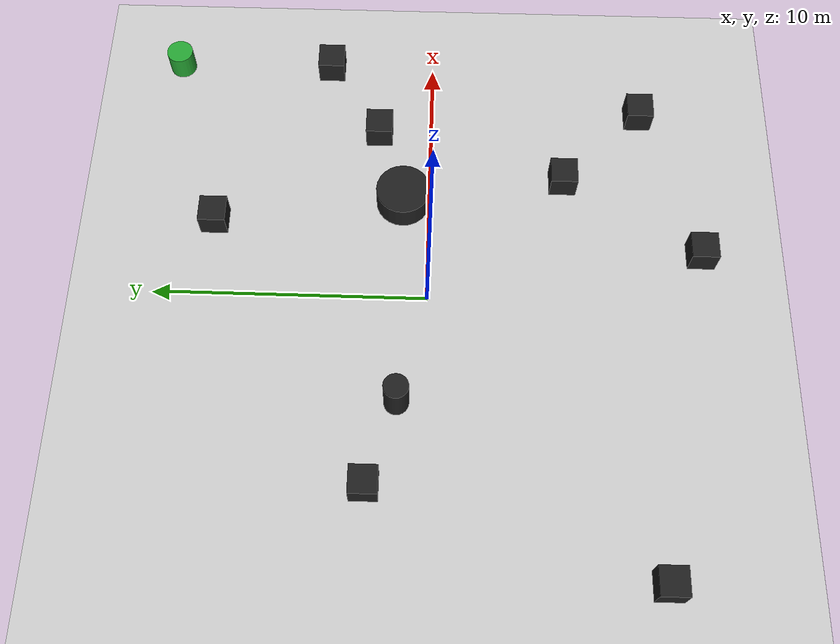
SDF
<sdf version="1.6">
 <world name="default">
  <light name="sun" type="directional">
   <pose>0 0 10 0 -0 0</pose>
   <diffuse>0.8 0.8 0.8 1</diffuse>
   <specular>0.2 0.2 0.2 1</specular>
   <attenuation>
    <range>1000</range>
    <constant>0.9</constant>
    <linear>0.01</linear>
    <quadratic>0.001</quadratic>
   </attenuation>
   <direction>-0.5 0.1 -0.9</direction>
  </light>
  <model name="ground_plane">
   <static>1</static>
   <link name="link">
    <collision name="collision">
     <geometry><plane><normal>0 0 1</normal><size>100 100</size></plane></geometry>
     <surface>
      <contact><collide_bitmask>65535</collide_bitmask></contact>
      <friction><ode><mu>100</mu><mu2>50</mu2></ode></friction>
     </surface>
    </collision>
    <visual name="visual">
     <cast_shadows>0</cast_shadows>
     <geometry><plane><normal>0 0 1</normal><size>100 100</size></plane></geometry>
     <material>
      <script><uri>file://media/materials/scripts/gazebo.material</uri><name>Gazebo/Grey</name></script>
     </material>
    </visual>
   </link>
  </model>
  <physics name="default_physics" default="0" type="ode">
   <max_step_size>0.01</max_step_size>
   <real_time_factor>1</real_time_factor>
   <real_time_update_rate>1000</real_time_update_rate>
  </physics>
  <model name="obs0">
   <pose>4 1 0.49912 0 -0 0</pose>
   <link name="link">
    <inertial>
     <mass>1</mass>
     <inertia><ixx>1</ixx><ixy>0</ixy><ixz>0</ixz><iyy>1</iyy><iyz>0</iyz><izz>1</izz></inertia>
    </inertial>
    <collision name="collision">
     <geometry><cylinder><radius>1</radius><length>1</length></cylinder></geometry>
    </collision>
    <visual name="visual">
     <geometry><cylinder><radius>1</radius><length>1</length></cylinder></geometry>
     <material>
      <script><uri>file://media/materials/scripts/gazebo.material</uri><name>Gazebo/Black</name></script>
     </material>
    </visual>
    <velocity_decay><linear>0</linear><angular>0</angular></velocity_decay>
   </link>
   <static>0</static>
  </model>
  <model name="obs1">
   <pose>-4 0.999993 0.853289 0 -0 7e-05</pose>
   <link name="link">
    <inertial>
     <mass>1</mass>
     <inertia><ixx>1</ixx><ixy>0</ixy><ixz>0</ixz><iyy>1</iyy><iyz>0</iyz><izz>1</izz></inertia>
    </inertial>
    <collision name="collision">
     <geometry><cylinder><radius>0.44509</radius><length>1.70834</length></cylinder></geometry>
    </collision>
    <visual name="visual">
     <geometry><cylinder><radius>0.44509</radius><length>1.70834</length></cylinder></geometry>
     <material>
      <script><uri>file://media/materials/scripts/gazebo.material</uri><name>Gazebo/Black</name></script>
     </material>
    </visual>
    <velocity_decay><linear>0</linear><angular>0</angular></velocity_decay>
   </link>
   <static>0</static>
  </model>
  <model name="obs2">
   <pose>-10 -8 0.5 0 -0 0</pose>
   <link name="link">
    <inertial>
     <mass>1</mass>
     <inertia><ixx>1</ixx><ixy>0</ixy><ixz>0</ixz><iyy>1</iyy><iyz>0</iyz><izz>1</izz></inertia>
    </inertial>
    <collision name="collision"><geometry><box><size>1 1 1</size></box></geometry></collision>
    <visual name="visual">
     <geometry><box><size>1 1 1</size></box></geometry>
     <material>
      <script><uri>file://media/materials/scripts/gazebo.material</uri><name>Gazebo/Black</name></script>
     </material>
    </visual>
    <velocity_decay><linear>0</linear><angular>0</angular></velocity_decay>
   </link>
   <static>0</static>
  </model>
  <model name="obs3">
   <pose>10 4 0.5 0 -0 0</pose>
   <link name="link">
    <inertial>
     <mass>1</mass>
     <inertia><ixx>1</ixx><ixy>0</ixy><ixz>0</ixz><iyy>1</iyy><iyz>0</iyz><izz>1</izz></inertia>
    </inertial>
    <collision name="collision"><geometry><box><size>1 1 1</size></box></geometry></collision>
    <visual name="visual">
     <geometry><box><size>1 1 1</size></box></geometry>
     <material>
      <script><uri>file://media/materials/scripts/gazebo.material</uri><name>Gazebo/Black</name></script>
     </material>
    </visual>
    <velocity_decay><linear>0</linear><angular>0</angular></velocity_decay>
   </link>
   <static>0</static>
  </model>
  <model name="obs4">
   <pose>7 2 0.5 0 -0 0</pose>
   <link name="link">
    <inertial>
     <mass>1</mass>
     <inertia><ixx>1</ixx><ixy>0</ixy><ixz>0</ixz><iyy>1</iyy><iyz>0</iyz><izz>1</izz></inertia>
    </inertial>
    <collision name="collision"><geometry><box><size>1 1 1</size></box></geometry></collision>
    <visual name="visual">
     <geometry><box><size>1 1 1</size></box></geometry>
     <material>
      <script><uri>file://media/materials/scripts/gazebo.material</uri><name>Gazebo/Black</name></script>
     </material>
    </visual>
    <velocity_decay><linear>0</linear><angular>0</angular></velocity_decay>
   </link>
   <static>0</static>
  </model>
  <model name="obs5">
   <pose>-7 2 0.5 0 -0 0</pose>
   <link name="link">
    <inertial>
     <mass>1</mass>
     <inertia><ixx>1</ixx><ixy>0</ixy><ixz>0</ixz><iyy>1</iyy><iyz>0</iyz><izz>1</izz></inertia>
    </inertial>
    <collision name="collision"><geometry><box><size>1 1 1</size></box></geometry></collision>
    <visual name="visual">
     <geometry><box><size>1 1 1</size></box></geometry>
     <material>
      <script><uri>file://media/materials/scripts/gazebo.material</uri><name>Gazebo/Black</name></script>
     </material>
    </visual>
    <velocity_decay><linear>0</linear><angular>0</angular></velocity_decay>
   </link>
   <static>0</static>
  </model>
  <model name="obs6">
   <pose>8 -8 0.5 0 -0 0</pose>
   <link name="link">
    <inertial>
     <mass>1</mass>
     <inertia><ixx>1</ixx><ixy>0</ixy><ixz>0</ixz><iyy>1</iyy><iyz>0</iyz><izz>1</izz></inertia>
    </inertial>
    <collision name="collision"><geometry><box><size>1 1 1</size></box></geometry></collision>
    <visual name="visual">
     <geometry><box><size>1 1 1</size></box></geometry>
     <material>
      <script><uri>file://media/materials/scripts/gazebo.material</uri><name>Gazebo/Black</name></script>
     </material>
    </visual>
    <velocity_decay><linear>0</linear><angular>0</angular></velocity_decay>
   </link>
   <static>0</static>
  </model>
  <model name="obs7">
   <pose>5 -5 0.5 0 -0 0</pose>
   <link name="link">
    <inertial>
     <mass>1</mass>
     <inertia><ixx>1</ixx><ixy>0</ixy><ixz>0</ixz><iyy>1</iyy><iyz>0</iyz><izz>1</izz></inertia>
    </inertial>
    <collision name="collision"><geometry><box><size>1 1 1</size></box></geometry></collision>
    <visual name="visual">
     <geometry><box><size>1 1 1</size></box></geometry>
     <material>
      <script><uri>file://media/materials/scripts/gazebo.material</uri><name>Gazebo/Black</name></script>
     </material>
    </visual>
    <velocity_decay><linear>0</linear><angular>0</angular></velocity_decay>
   </link>
   <static>0</static>
  </model>
  <model name="obs8">
   <pose>2 -10 0.5 0 -0 0</pose>
   <link name="link">
    <inertial>
     <mass>1</mass>
     <inertia><ixx>1</ixx><ixy>0</ixy><ixz>0</ixz><iyy>1</iyy><iyz>0</iyz><izz>1</izz></inertia>
    </inertial>
    <collision name="collision"><geometry><box><size>1 1 1</size></box></geometry></collision>
    <visual name="visual">
     <geometry><box><size>1 1 1</size></box></geometry>
     <material>
      <script><uri>file://media/materials/scripts/gazebo.material</uri><name>Gazebo/Black</name></script>
     </material>
    </visual>
    <velocity_decay><linear>0</linear><angular>0</angular></velocity_decay>
   </link>
   <static>0</static>
  </model>
  <model name="obs9">
   <pose>3 8 0.5 0 -0 0</pose>
   <link name="link">
    <inertial>
     <mass>1</mass>
     <inertia><ixx>1</ixx><ixy>0</ixy><ixz>0</ixz><iyy>1</iyy><iyz>0</iyz><izz>1</izz></inertia>
    </inertial>
    <collision name="collision"><geometry><box><size>1 1 1</size></box></geometry></collision>
    <visual name="visual">
     <geometry><box><size>1 1 1</size></box></geometry>
     <material>
      <script><uri>file://media/materials/scripts/gazebo.material</uri><name>Gazebo/Black</name></script>
     </material>
    </visual>
    <velocity_decay><linear>0</linear><angular>0</angular></velocity_decay>
   </link>
   <static>0</static>
  </model>
  <model name="agent_point_goal">
   <pose>10 10 0.5 0 -0 0</pose>
   <link name="link">
    <inertial>
     <mass>1</mass>
     <inertia><ixx>1</ixx><ixy>0</ixy><ixz>0</ixz><iyy>1</iyy><iyz>0</iyz><izz>1</izz></inertia>
    </inertial>
    <visual name="visual">
     <geometry><cylinder><radius>0.5</radius><length>1</length></cylinder></geometry>
     <material>
      <script><uri>file://media/materials/scripts/gazebo.material</uri><name>Gazebo/Green</name></script>
     </material>
    </visual>
    <velocity_decay><linear>0</linear><angular>0</angular></velocity_decay>
    <gravity>0</gravity>
   </link>
  </model>
  <gravity>0 0 -9.8</gravity>
  <magnetic_field>6e-06 2.3e-05 -4.2e-05</magnetic_field>
  <atmosphere type="adiabatic"/>
  <scene><ambient>0.4 0.4 0.4 1</ambient><background>0.7 0.7 0.7 1</background><shadows>1</shadows></scene>
  <spherical_coordinates>
   <surface_model>EARTH_WGS84</surface_model>
   <latitude_deg>0</latitude_deg>
   <longitude_deg>0</longitude_deg>
   <elevation>0</elevation>
   <heading_deg>0</heading_deg>
  </spherical_coordinates>
 </world>
</sdf>
